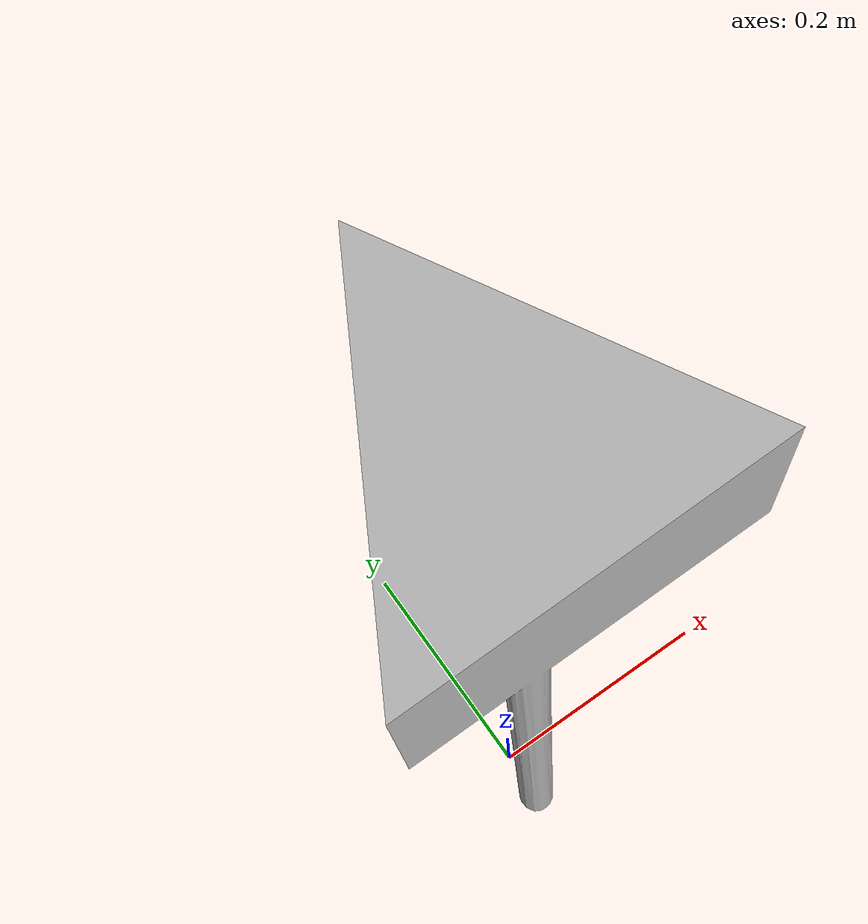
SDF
<?xml version="1.0" ?>
<sdf version="1.6">
  <model name="AR Post Leg 1">
    <static>true</static>
    <link name="link">
      <collision name="collision">
        <geometry>
          <mesh>
            <uri>model://ar_post/meshes/ar_post.dae</uri>
          </mesh>
        </geometry>
      </collision>
      <visual name="visual">
        <geometry>
          <mesh>
            <uri>model://ar_post/meshes/ar_post.dae</uri>
          </mesh>
        </geometry>
        <material>
          <script>
            <uri>model://ar_post/materials/scripts</uri>
            <uri>model://ar_post/materials/textures</uri>
            <name>ARLeg1</name>
          </script>
        </material>
      </visual>
    </link>
  </model>
</sdf>
